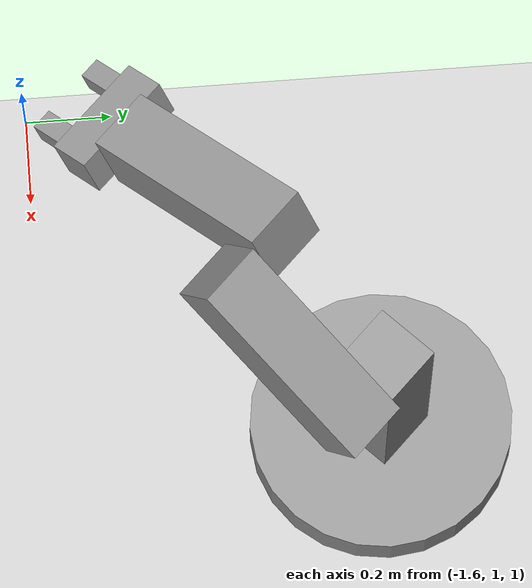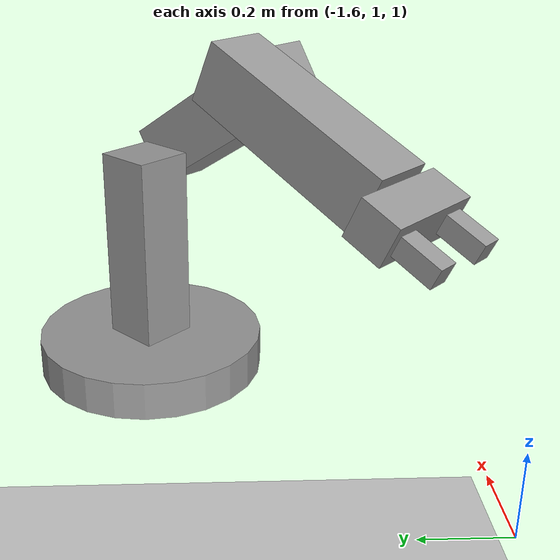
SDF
<sdf version="1.7">
 <world name="default">
  <model name="ground_plane">
   <static>1</static>
   <link name="link">
    <collision name="collision">
     <geometry><plane><normal>0 0 1</normal><size>100 100</size></plane></geometry>
     <surface>
      <contact><collide_bitmask>65535</collide_bitmask></contact>
      <friction><ode><mu>100</mu><mu2>50</mu2></ode></friction>
     </surface>
    </collision>
    <visual name="visual">
     <cast_shadows>0</cast_shadows>
     <geometry><plane><normal>0 0 1</normal><size>100 100</size></plane></geometry>
     <material>
      <script><uri>file://media/materials/scripts/gazebo.material</uri><name>Gazebo/Grey</name></script>
     </material>
    </visual>
   </link>
  </model>
  <model name="fixed_arm_robot_clone_1">
   <link name="link_0">
    <inertial>
     <mass>1</mass>
     <inertia><ixx>0.145833</ixx><ixy>0</ixy><ixz>0</ixz><iyy>0.145833</iyy><iyz>0</iyz><izz>0.125</izz></inertia>
    </inertial>
    <pose>-0.37347 -0.501985 -0.410714 0 -0 0</pose>
    <visual name="visual">
     <geometry><cylinder><radius>0.3</radius><length>0.1</length></cylinder></geometry>
     <material>
      <lighting>1</lighting>
      <script><uri>file://media/materials/scripts/gazebo.material</uri><name>Gazebo/Grey</name></script>
      <shader type="pixel"><normal_map>__default__</normal_map></shader>
      <ambient>0.3 0.3 0.3 1</ambient>
      <diffuse>0.7 0.7 0.7 1</diffuse>
      <specular>0.01 0.01 0.01 1</specular>
      <emissive>0 0 0 1</emissive>
     </material>
    </visual>
    <collision name="collision">
     <geometry><cylinder><radius>0.3</radius><length>0.1</length></cylinder></geometry>
     <surface>
      <friction>
       <ode><mu>1</mu><mu2>1</mu2><fdir1>0 0 0</fdir1><slip1>0</slip1><slip2>0</slip2></ode>
       <torsional>
        <coefficient>1</coefficient>
        <patch_radius>0</patch_radius>
        <surface_radius>0</surface_radius>
        <use_patch_radius>1</use_patch_radius>
        <ode><slip>0</slip></ode>
       </torsional>
      </friction>
      <bounce><restitution_coefficient>0</restitution_coefficient><threshold>1e+06</threshold></bounce>
      <contact>
       <collide_without_contact>0</collide_without_contact>
       <collide_without_contact_bitmask>1</collide_without_contact_bitmask>
       <collide_bitmask>1</collide_bitmask>
       <ode>
        <soft_cfm>0</soft_cfm>
        <soft_erp>0.2</soft_erp>
        <kp>1e+13</kp>
        <kd>1</kd>
        <max_vel>0.01</max_vel>
        <min_depth>0</min_depth>
       </ode>
       <bullet>
        <split_impulse>1</split_impulse>
        <split_impulse_penetration_threshold>-0.01</split_impulse_penetration_threshold>
        <soft_cfm>0</soft_cfm>
        <soft_erp>0.2</soft_erp>
        <kp>1e+13</kp>
        <kd>1</kd>
       </bullet>
      </contact>
     </surface>
    </collision>
   </link>
   <link name="link_1">
    <inertial>
     <mass>1</mass>
     <inertia>
      <ixx>0.166667</ixx>
      <ixy>0</ixy>
      <ixz>0</ixz>
      <iyy>0.166667</iyy>
      <iyz>0</iyz>
      <izz>0.166667</izz>
     </inertia>
    </inertial>
    <pose>-0.37347 -0.501985 -0.110714 0 -0 0</pose>
    <visual name="visual">
     <geometry><box><size>0.15 0.15 0.5</size></box></geometry>
     <material>
      <lighting>1</lighting>
      <script><uri>file://media/materials/scripts/gazebo.material</uri><name>Gazebo/Grey</name></script>
      <shader type="pixel"><normal_map>__default__</normal_map></shader>
      <ambient>0.3 0.3 0.3 1</ambient>
      <diffuse>0.7 0.7 0.7 1</diffuse>
      <specular>0.01 0.01 0.01 1</specular>
      <emissive>0 0 0 1</emissive>
     </material>
    </visual>
    <collision name="collision">
     <geometry><box><size>0.15 0.15 0.5</size></box></geometry>
     <surface>
      <friction>
       <ode><mu>1</mu><mu2>1</mu2><fdir1>0 0 0</fdir1><slip1>0</slip1><slip2>0</slip2></ode>
       <torsional>
        <coefficient>1</coefficient>
        <patch_radius>0</patch_radius>
        <surface_radius>0</surface_radius>
        <use_patch_radius>1</use_patch_radius>
        <ode><slip>0</slip></ode>
       </torsional>
      </friction>
      <bounce><restitution_coefficient>0</restitution_coefficient><threshold>1e+06</threshold></bounce>
      <contact>
       <collide_without_contact>0</collide_without_contact>
       <collide_without_contact_bitmask>1</collide_without_contact_bitmask>
       <collide_bitmask>1</collide_bitmask>
       <ode>
        <soft_cfm>0</soft_cfm>
        <soft_erp>0.2</soft_erp>
        <kp>1e+13</kp>
        <kd>1</kd>
        <max_vel>0.01</max_vel>
        <min_depth>0</min_depth>
       </ode>
       <bullet>
        <split_impulse>1</split_impulse>
        <split_impulse_penetration_threshold>-0.01</split_impulse_penetration_threshold>
        <soft_cfm>0</soft_cfm>
        <soft_erp>0.2</soft_erp>
        <kp>1e+13</kp>
        <kd>1</kd>
       </bullet>
      </contact>
     </surface>
    </collision>
   </link>
   <link name="link_1_clone">
    <inertial>
     <mass>1</mass>
     <inertia>
      <ixx>0.166667</ixx>
      <ixy>0</ixy>
      <ixz>0</ixz>
      <iyy>0.166667</iyy>
      <iyz>0</iyz>
      <izz>0.166667</izz>
     </inertia>
    </inertial>
    <pose>-0.37347 -0.351985 0.139286 0 1 0</pose>
    <visual name="visual">
     <pose>0 0 0.175 0 -0 0</pose>
     <geometry><box><size>0.15 0.15 0.5</size></box></geometry>
     <material>
      <lighting>1</lighting>
      <script><uri>file://media/materials/scripts/gazebo.material</uri><name>Gazebo/Grey</name></script>
      <shader type="pixel"><normal_map>__default__</normal_map></shader>
      <ambient>0.3 0.3 0.3 1</ambient>
      <diffuse>0.7 0.7 0.7 1</diffuse>
      <specular>0.01 0.01 0.01 1</specular>
      <emissive>0 0 0 1</emissive>
     </material>
    </visual>
    <collision name="collision">
     <pose>0 0 0.175 0 -0 0</pose>
     <geometry><box><size>0.15 0.15 0.5</size></box></geometry>
     <surface>
      <friction>
       <ode><mu>1</mu><mu2>1</mu2><fdir1>0 0 0</fdir1><slip1>0</slip1><slip2>0</slip2></ode>
       <torsional>
        <coefficient>1</coefficient>
        <patch_radius>0</patch_radius>
        <surface_radius>0</surface_radius>
        <use_patch_radius>1</use_patch_radius>
        <ode><slip>0</slip></ode>
       </torsional>
      </friction>
      <bounce><restitution_coefficient>0</restitution_coefficient><threshold>1e+06</threshold></bounce>
      <contact>
       <collide_without_contact>0</collide_without_contact>
       <collide_without_contact_bitmask>1</collide_without_contact_bitmask>
       <collide_bitmask>1</collide_bitmask>
       <ode>
        <soft_cfm>0</soft_cfm>
        <soft_erp>0.2</soft_erp>
        <kp>1e+13</kp>
        <kd>1</kd>
        <max_vel>0.01</max_vel>
        <min_depth>0</min_depth>
       </ode>
       <bullet>
        <split_impulse>1</split_impulse>
        <split_impulse_penetration_threshold>-0.01</split_impulse_penetration_threshold>
        <soft_cfm>0</soft_cfm>
        <soft_erp>0.2</soft_erp>
        <kp>1e+13</kp>
        <kd>1</kd>
       </bullet>
      </contact>
     </surface>
    </collision>
   </link>
   <link name="link_1_clone_clone">
    <inertial>
     <mass>1</mass>
     <inertia>
      <ixx>0.166667</ixx>
      <ixy>0</ixy>
      <ixz>0</ixz>
      <iyy>0.166667</iyy>
      <iyz>0</iyz>
      <izz>0.166667</izz>
     </inertia>
    </inertial>
    <pose>-0.015845 -0.501985 0.368914 3.14159 1.14159 3.14159</pose>
    <visual name="visual">
     <pose>0 0 0.175 0 -0 0</pose>
     <geometry><box><size>0.15 0.15 0.5</size></box></geometry>
     <material>
      <lighting>1</lighting>
      <script><uri>file://media/materials/scripts/gazebo.material</uri><name>Gazebo/Grey</name></script>
      <shader type="pixel"><normal_map>__default__</normal_map></shader>
      <ambient>0.3 0.3 0.3 1</ambient>
      <diffuse>0.7 0.7 0.7 1</diffuse>
      <specular>0.01 0.01 0.01 1</specular>
      <emissive>0 0 0 1</emissive>
     </material>
    </visual>
    <collision name="collision">
     <pose>0 0 0.175 0 -0 0</pose>
     <geometry><box><size>0.15 0.15 0.5</size></box></geometry>
     <surface>
      <friction>
       <ode><mu>1</mu><mu2>1</mu2><fdir1>0 0 0</fdir1><slip1>0</slip1><slip2>0</slip2></ode>
       <torsional>
        <coefficient>1</coefficient>
        <patch_radius>0</patch_radius>
        <surface_radius>0</surface_radius>
        <use_patch_radius>1</use_patch_radius>
        <ode><slip>0</slip></ode>
       </torsional>
      </friction>
      <bounce><restitution_coefficient>0</restitution_coefficient><threshold>1e+06</threshold></bounce>
      <contact>
       <collide_without_contact>0</collide_without_contact>
       <collide_without_contact_bitmask>1</collide_without_contact_bitmask>
       <collide_bitmask>1</collide_bitmask>
       <ode>
        <soft_cfm>0</soft_cfm>
        <soft_erp>0.2</soft_erp>
        <kp>1e+13</kp>
        <kd>1</kd>
        <max_vel>0.01</max_vel>
        <min_depth>0</min_depth>
       </ode>
       <bullet>
        <split_impulse>1</split_impulse>
        <split_impulse_penetration_threshold>-0.01</split_impulse_penetration_threshold>
        <soft_cfm>0</soft_cfm>
        <soft_erp>0.2</soft_erp>
        <kp>1e+13</kp>
        <kd>1</kd>
       </bullet>
      </contact>
     </surface>
    </collision>
   </link>
   <link name="link_2">
    <inertial>
     <mass>1</mass>
     <inertia>
      <ixx>0.166667</ixx>
      <ixy>0</ixy>
      <ixz>0</ixz>
      <iyy>0.166667</iyy>
      <iyz>0</iyz>
      <izz>0.166667</izz>
     </inertia>
    </inertial>
    <pose>0.416072 -0.501985 0.171244 -1.5708 1.14159 -3.14159</pose>
    <visual name="visual">
     <geometry><box><size>0.1 0.1 0.25</size></box></geometry>
     <material>
      <lighting>1</lighting>
      <script><uri>file://media/materials/scripts/gazebo.material</uri><name>Gazebo/Grey</name></script>
      <shader type="pixel"><normal_map>__default__</normal_map></shader>
      <ambient>0.3 0.3 0.3 1</ambient>
      <diffuse>0.7 0.7 0.7 1</diffuse>
      <specular>0.01 0.01 0.01 1</specular>
      <emissive>0 0 0 1</emissive>
     </material>
    </visual>
    <collision name="collision">
     <geometry><box><size>0.1 0.1 0.25</size></box></geometry>
     <surface>
      <friction>
       <ode><mu>1</mu><mu2>1</mu2><fdir1>0 0 0</fdir1><slip1>0</slip1><slip2>0</slip2></ode>
       <torsional>
        <coefficient>1</coefficient>
        <patch_radius>0</patch_radius>
        <surface_radius>0</surface_radius>
        <use_patch_radius>1</use_patch_radius>
        <ode><slip>0</slip></ode>
       </torsional>
      </friction>
      <bounce><restitution_coefficient>0</restitution_coefficient><threshold>1e+06</threshold></bounce>
      <contact>
       <collide_without_contact>0</collide_without_contact>
       <collide_without_contact_bitmask>1</collide_without_contact_bitmask>
       <collide_bitmask>1</collide_bitmask>
       <ode>
        <soft_cfm>0</soft_cfm>
        <soft_erp>0.2</soft_erp>
        <kp>1e+13</kp>
        <kd>1</kd>
        <max_vel>0.01</max_vel>
        <min_depth>0</min_depth>
       </ode>
       <bullet>
        <split_impulse>1</split_impulse>
        <split_impulse_penetration_threshold>-0.01</split_impulse_penetration_threshold>
        <soft_cfm>0</soft_cfm>
        <soft_erp>0.2</soft_erp>
        <kp>1e+13</kp>
        <kd>1</kd>
       </bullet>
      </contact>
     </surface>
    </collision>
   </link>
   <link name="link_3">
    <inertial>
     <mass>1</mass>
     <inertia>
      <ixx>0.166667</ixx>
      <ixy>0</ixy>
      <ixz>0</ixz>
      <iyy>0.166667</iyy>
      <iyz>0</iyz>
      <izz>0.166667</izz>
     </inertia>
    </inertial>
    <pose>0.507001 -0.421985 0.12963 -1e-06 1.14159 -3.14159</pose>
    <visual name="visual">
     <geometry><box><size>0.05 0.05 0.1</size></box></geometry>
     <material>
      <lighting>1</lighting>
      <script><uri>file://media/materials/scripts/gazebo.material</uri><name>Gazebo/Grey</name></script>
      <shader type="pixel"><normal_map>__default__</normal_map></shader>
      <ambient>0.3 0.3 0.3 1</ambient>
      <diffuse>0.7 0.7 0.7 1</diffuse>
      <specular>0.01 0.01 0.01 1</specular>
      <emissive>0 0 0 1</emissive>
     </material>
    </visual>
    <collision name="collision">
     <geometry><box><size>0.05 0.05 0.1</size></box></geometry>
     <surface>
      <friction>
       <ode><mu>1</mu><mu2>1</mu2><fdir1>0 0 0</fdir1><slip1>0</slip1><slip2>0</slip2></ode>
       <torsional>
        <coefficient>1</coefficient>
        <patch_radius>0</patch_radius>
        <surface_radius>0</surface_radius>
        <use_patch_radius>1</use_patch_radius>
        <ode><slip>0</slip></ode>
       </torsional>
      </friction>
      <bounce><restitution_coefficient>0</restitution_coefficient><threshold>1e+06</threshold></bounce>
      <contact>
       <collide_without_contact>0</collide_without_contact>
       <collide_without_contact_bitmask>1</collide_without_contact_bitmask>
       <collide_bitmask>1</collide_bitmask>
       <ode>
        <soft_cfm>0</soft_cfm>
        <soft_erp>0.2</soft_erp>
        <kp>1e+13</kp>
        <kd>1</kd>
        <max_vel>0.01</max_vel>
        <min_depth>0</min_depth>
       </ode>
       <bullet>
        <split_impulse>1</split_impulse>
        <split_impulse_penetration_threshold>-0.01</split_impulse_penetration_threshold>
        <soft_cfm>0</soft_cfm>
        <soft_erp>0.2</soft_erp>
        <kp>1e+13</kp>
        <kd>1</kd>
       </bullet>
      </contact>
     </surface>
    </collision>
   </link>
   <link name="link_3_clone">
    <inertial>
     <mass>1</mass>
     <inertia>
      <ixx>0.166667</ixx>
      <ixy>0</ixy>
      <ixz>0</ixz>
      <iyy>0.166667</iyy>
      <iyz>0</iyz>
      <izz>0.166667</izz>
     </inertia>
    </inertial>
    <pose>0.507002 -0.581985 0.12963 -1e-06 1.14159 -3.14159</pose>
    <visual name="visual">
     <geometry><box><size>0.05 0.05 0.1</size></box></geometry>
     <material>
      <lighting>1</lighting>
      <script><uri>file://media/materials/scripts/gazebo.material</uri><name>Gazebo/Grey</name></script>
      <shader type="pixel"><normal_map>__default__</normal_map></shader>
      <ambient>0.3 0.3 0.3 1</ambient>
      <diffuse>0.7 0.7 0.7 1</diffuse>
      <specular>0.01 0.01 0.01 1</specular>
      <emissive>0 0 0 1</emissive>
     </material>
    </visual>
    <collision name="collision">
     <geometry><box><size>0.05 0.05 0.1</size></box></geometry>
     <surface>
      <friction>
       <ode><mu>1</mu><mu2>1</mu2><fdir1>0 0 0</fdir1><slip1>0</slip1><slip2>0</slip2></ode>
       <torsional>
        <coefficient>1</coefficient>
        <patch_radius>0</patch_radius>
        <surface_radius>0</surface_radius>
        <use_patch_radius>1</use_patch_radius>
        <ode><slip>0</slip></ode>
       </torsional>
      </friction>
      <bounce><restitution_coefficient>0</restitution_coefficient><threshold>1e+06</threshold></bounce>
      <contact>
       <collide_without_contact>0</collide_without_contact>
       <collide_without_contact_bitmask>1</collide_without_contact_bitmask>
       <collide_bitmask>1</collide_bitmask>
       <ode>
        <soft_cfm>0</soft_cfm>
        <soft_erp>0.2</soft_erp>
        <kp>1e+13</kp>
        <kd>1</kd>
        <max_vel>0.01</max_vel>
        <min_depth>0</min_depth>
       </ode>
       <bullet>
        <split_impulse>1</split_impulse>
        <split_impulse_penetration_threshold>-0.01</split_impulse_penetration_threshold>
        <soft_cfm>0</soft_cfm>
        <soft_erp>0.2</soft_erp>
        <kp>1e+13</kp>
        <kd>1</kd>
       </bullet>
      </contact>
     </surface>
    </collision>
   </link>
   <joint name="link_0_JOINT_0" type="fixed">
    <parent>link_0</parent>
    <child>link_1</child>
    <physics>
     <ode><limit><cfm>0</cfm><erp>0.2</erp></limit><suspension><cfm>0</cfm><erp>0.2</erp></suspension></ode>
    </physics>
   </joint>
   <joint name="link_1_JOINT_5" type="fixed">
    <parent>link_1</parent>
    <child>link_1_clone</child>
    <physics>
     <ode><limit><cfm>0</cfm><erp>0.2</erp></limit><suspension><cfm>0</cfm><erp>0.2</erp></suspension></ode>
    </physics>
   </joint>
   <joint name="link_1_clone_JOINT_6" type="fixed">
    <parent>link_1_clone</parent>
    <child>link_1_clone_clone</child>
    <physics>
     <ode><limit><cfm>0</cfm><erp>0.2</erp></limit><suspension><cfm>0</cfm><erp>0.2</erp></suspension></ode>
    </physics>
   </joint>
   <joint name="link_1_clone_clone_JOINT_8" type="fixed">
    <parent>link_1_clone_clone</parent>
    <child>link_2</child>
    <physics>
     <ode><limit><cfm>0</cfm><erp>0.2</erp></limit><suspension><cfm>0</cfm><erp>0.2</erp></suspension></ode>
    </physics>
   </joint>
   <joint name="link_2_JOINT_9" type="fixed">
    <parent>link_2</parent>
    <child>link_3</child>
    <physics>
     <ode><limit><cfm>0</cfm><erp>0.2</erp></limit><suspension><cfm>0</cfm><erp>0.2</erp></suspension></ode>
    </physics>
   </joint>
   <joint name="link_3_JOINT_10" type="fixed">
    <parent>link_3</parent>
    <child>link_3_clone</child>
    <physics>
     <ode><limit><cfm>0</cfm><erp>0.2</erp></limit><suspension><cfm>0</cfm><erp>0.2</erp></suspension></ode>
    </physics>
   </joint>
   <static>1</static>
   <pose>-0.710702 1.14639 1.42548 -1e-06 1e-06 -2.36039</pose>
  </model>
 </world>
</sdf>
